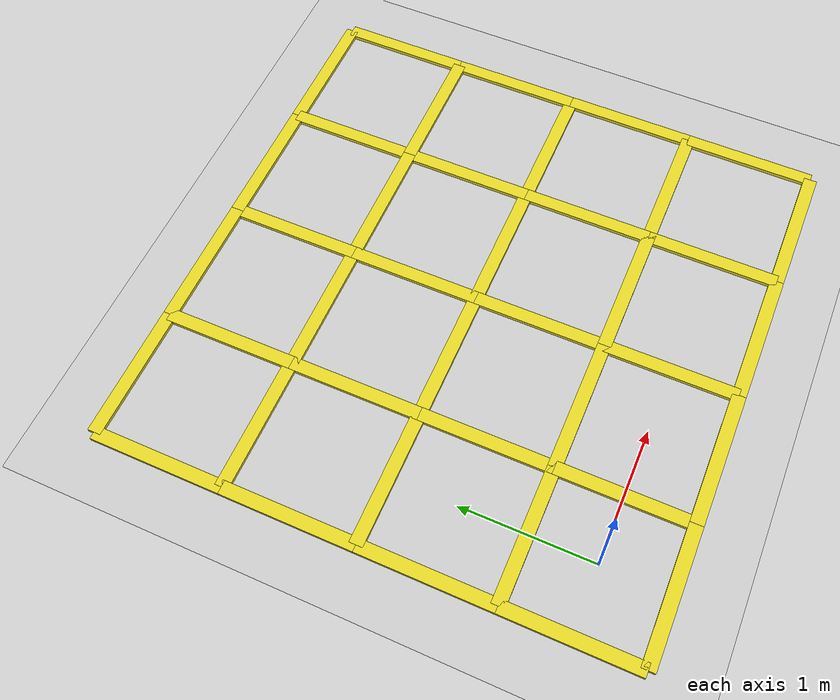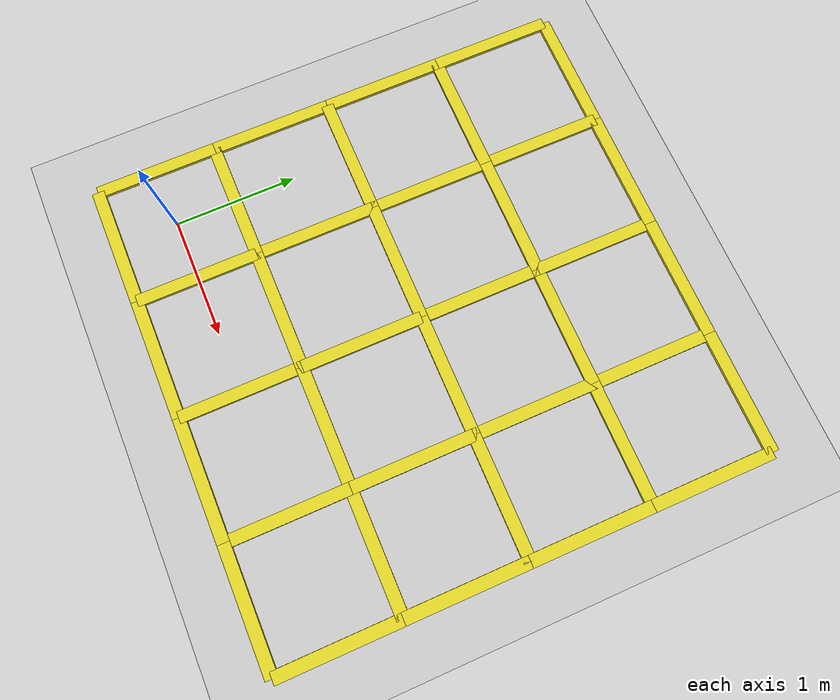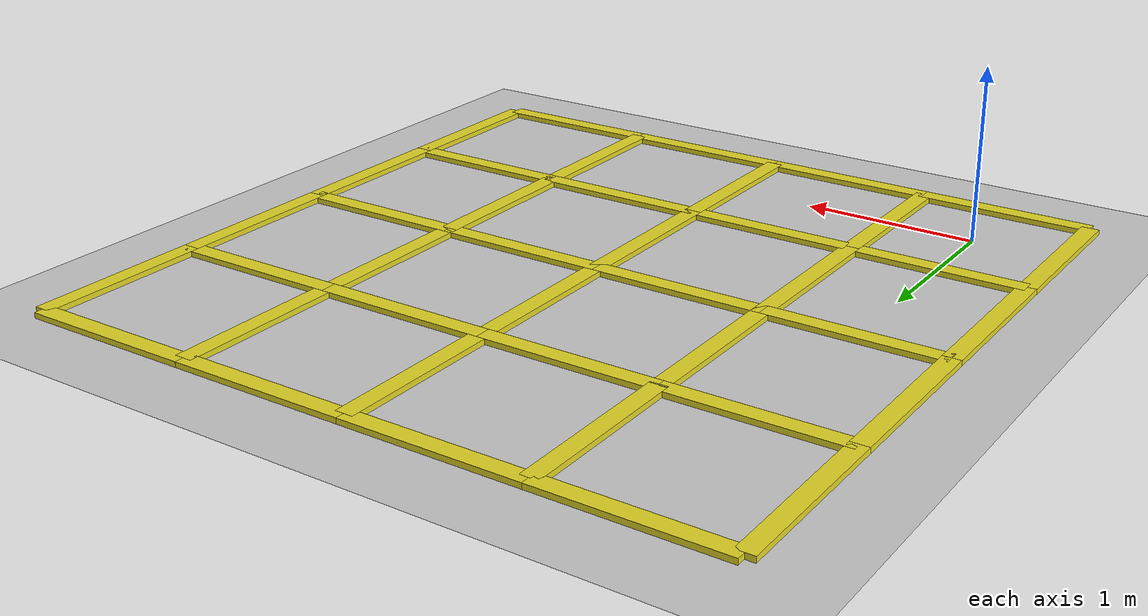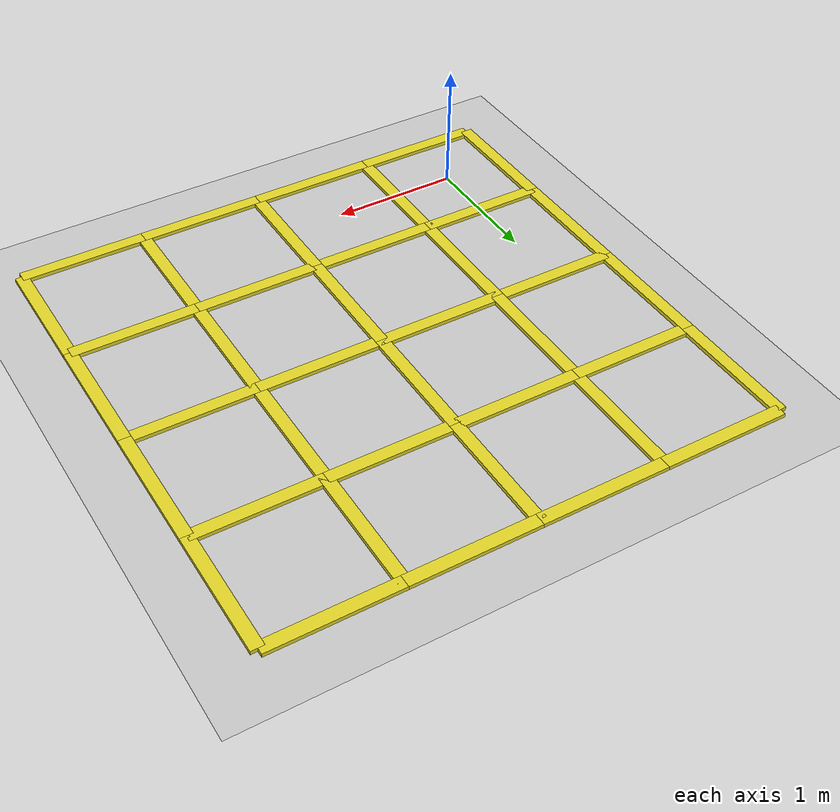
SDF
<sdf version="1.4">
 <world name="default">
  <include><uri>model://sun</uri></include>
  <include><uri>model://ground_plane</uri></include>
  <model name="yellow line_00_1">
   <static>1</static>
   <link name="link_ground">
    <collision name="collision">
     <geometry><plane><normal>0 0 1</normal><size>0.1 1.0</size></plane></geometry>
     <surface><friction><ode><mu>100</mu><mu2>50</mu2></ode></friction></surface>
    </collision>
    <visual name="visual_ground">
     <cast_shadows>0</cast_shadows>
     <geometry><box><size>0.1 1.0 0.05</size></box></geometry>
     <material>
      <script><uri>file://media/materials/scripts/gazebo.material</uri><name>Gazebo/Yellow</name></script>
     </material>
    </visual>
   </link>
   <pose>0.5 0.0 0 0 0 0</pose>
  </model>
  <model name="yellow line_00_2">
   <static>1</static>
   <link name="link_ground">
    <collision name="collision">
     <geometry><plane><normal>0 0 1</normal><size>0.1 1.0</size></plane></geometry>
     <surface><friction><ode><mu>100</mu><mu2>50</mu2></ode></friction></surface>
    </collision>
    <visual name="visual_ground">
     <cast_shadows>0</cast_shadows>
     <geometry><box><size>0.1 1.0 0.05</size></box></geometry>
     <material>
      <script><uri>file://media/materials/scripts/gazebo.material</uri><name>Gazebo/Yellow</name></script>
     </material>
    </visual>
   </link>
   <pose>-0.5 0.0 0 0 0 0</pose>
  </model>
  <model name="yellow line_00_3">
   <static>1</static>
   <link name="link_ground">
    <collision name="collision">
     <geometry><plane><normal>0 0 1</normal><size>0.1 1.0</size></plane></geometry>
     <surface><friction><ode><mu>100</mu><mu2>50</mu2></ode></friction></surface>
    </collision>
    <visual name="visual_ground">
     <cast_shadows>0</cast_shadows>
     <geometry><box><size>0.1 1.0 0.05</size></box></geometry>
     <material>
      <script><uri>file://media/materials/scripts/gazebo.material</uri><name>Gazebo/Yellow</name></script>
     </material>
    </visual>
   </link>
   <pose>0.0 0.5 0 0 0 1.57079632679</pose>
  </model>
  <model name="yellow line_00_4">
   <static>1</static>
   <link name="link_ground">
    <collision name="collision">
     <geometry><plane><normal>0 0 1</normal><size>0.1 1.0</size></plane></geometry>
     <surface><friction><ode><mu>100</mu><mu2>50</mu2></ode></friction></surface>
    </collision>
    <visual name="visual_ground">
     <cast_shadows>0</cast_shadows>
     <geometry><box><size>0.1 1.0 0.05</size></box></geometry>
     <material>
      <script><uri>file://media/materials/scripts/gazebo.material</uri><name>Gazebo/Yellow</name></script>
     </material>
    </visual>
   </link>
   <pose>0.0 -0.5 0 0 0 1.57079632679</pose>
  </model>
  <model name="yellow line_01_1">
   <static>1</static>
   <link name="link_ground">
    <collision name="collision">
     <geometry><plane><normal>0 0 1</normal><size>0.1 1.0</size></plane></geometry>
     <surface><friction><ode><mu>100</mu><mu2>50</mu2></ode></friction></surface>
    </collision>
    <visual name="visual_ground">
     <cast_shadows>0</cast_shadows>
     <geometry><box><size>0.1 1.0 0.05</size></box></geometry>
     <material>
      <script><uri>file://media/materials/scripts/gazebo.material</uri><name>Gazebo/Yellow</name></script>
     </material>
    </visual>
   </link>
   <pose>1.5 0.0 0 0 0 0</pose>
  </model>
  <model name="yellow line_01_2">
   <static>1</static>
   <link name="link_ground">
    <collision name="collision">
     <geometry><plane><normal>0 0 1</normal><size>0.1 1.0</size></plane></geometry>
     <surface><friction><ode><mu>100</mu><mu2>50</mu2></ode></friction></surface>
    </collision>
    <visual name="visual_ground">
     <cast_shadows>0</cast_shadows>
     <geometry><box><size>0.1 1.0 0.05</size></box></geometry>
     <material>
      <script><uri>file://media/materials/scripts/gazebo.material</uri><name>Gazebo/Yellow</name></script>
     </material>
    </visual>
   </link>
   <pose>0.5 0.0 0 0 0 0</pose>
  </model>
  <model name="yellow line_01_3">
   <static>1</static>
   <link name="link_ground">
    <collision name="collision">
     <geometry><plane><normal>0 0 1</normal><size>0.1 1.0</size></plane></geometry>
     <surface><friction><ode><mu>100</mu><mu2>50</mu2></ode></friction></surface>
    </collision>
    <visual name="visual_ground">
     <cast_shadows>0</cast_shadows>
     <geometry><box><size>0.1 1.0 0.05</size></box></geometry>
     <material>
      <script><uri>file://media/materials/scripts/gazebo.material</uri><name>Gazebo/Yellow</name></script>
     </material>
    </visual>
   </link>
   <pose>1.0 0.5 0 0 0 1.57079632679</pose>
  </model>
  <model name="yellow line_01_4">
   <static>1</static>
   <link name="link_ground">
    <collision name="collision">
     <geometry><plane><normal>0 0 1</normal><size>0.1 1.0</size></plane></geometry>
     <surface><friction><ode><mu>100</mu><mu2>50</mu2></ode></friction></surface>
    </collision>
    <visual name="visual_ground">
     <cast_shadows>0</cast_shadows>
     <geometry><box><size>0.1 1.0 0.05</size></box></geometry>
     <material>
      <script><uri>file://media/materials/scripts/gazebo.material</uri><name>Gazebo/Yellow</name></script>
     </material>
    </visual>
   </link>
   <pose>1.0 -0.5 0 0 0 1.57079632679</pose>
  </model>
  <model name="yellow line_02_1">
   <static>1</static>
   <link name="link_ground">
    <collision name="collision">
     <geometry><plane><normal>0 0 1</normal><size>0.1 1.0</size></plane></geometry>
     <surface><friction><ode><mu>100</mu><mu2>50</mu2></ode></friction></surface>
    </collision>
    <visual name="visual_ground">
     <cast_shadows>0</cast_shadows>
     <geometry><box><size>0.1 1.0 0.05</size></box></geometry>
     <material>
      <script><uri>file://media/materials/scripts/gazebo.material</uri><name>Gazebo/Yellow</name></script>
     </material>
    </visual>
   </link>
   <pose>2.5 0.0 0 0 0 0</pose>
  </model>
  <model name="yellow line_02_2">
   <static>1</static>
   <link name="link_ground">
    <collision name="collision">
     <geometry><plane><normal>0 0 1</normal><size>0.1 1.0</size></plane></geometry>
     <surface><friction><ode><mu>100</mu><mu2>50</mu2></ode></friction></surface>
    </collision>
    <visual name="visual_ground">
     <cast_shadows>0</cast_shadows>
     <geometry><box><size>0.1 1.0 0.05</size></box></geometry>
     <material>
      <script><uri>file://media/materials/scripts/gazebo.material</uri><name>Gazebo/Yellow</name></script>
     </material>
    </visual>
   </link>
   <pose>1.5 0.0 0 0 0 0</pose>
  </model>
  <model name="yellow line_02_3">
   <static>1</static>
   <link name="link_ground">
    <collision name="collision">
     <geometry><plane><normal>0 0 1</normal><size>0.1 1.0</size></plane></geometry>
     <surface><friction><ode><mu>100</mu><mu2>50</mu2></ode></friction></surface>
    </collision>
    <visual name="visual_ground">
     <cast_shadows>0</cast_shadows>
     <geometry><box><size>0.1 1.0 0.05</size></box></geometry>
     <material>
      <script><uri>file://media/materials/scripts/gazebo.material</uri><name>Gazebo/Yellow</name></script>
     </material>
    </visual>
   </link>
   <pose>2.0 0.5 0 0 0 1.57079632679</pose>
  </model>
  <model name="yellow line_02_4">
   <static>1</static>
   <link name="link_ground">
    <collision name="collision">
     <geometry><plane><normal>0 0 1</normal><size>0.1 1.0</size></plane></geometry>
     <surface><friction><ode><mu>100</mu><mu2>50</mu2></ode></friction></surface>
    </collision>
    <visual name="visual_ground">
     <cast_shadows>0</cast_shadows>
     <geometry><box><size>0.1 1.0 0.05</size></box></geometry>
     <material>
      <script><uri>file://media/materials/scripts/gazebo.material</uri><name>Gazebo/Yellow</name></script>
     </material>
    </visual>
   </link>
   <pose>2.0 -0.5 0 0 0 1.57079632679</pose>
  </model>
  <model name="yellow line_03_1">
   <static>1</static>
   <link name="link_ground">
    <collision name="collision">
     <geometry><plane><normal>0 0 1</normal><size>0.1 1.0</size></plane></geometry>
     <surface><friction><ode><mu>100</mu><mu2>50</mu2></ode></friction></surface>
    </collision>
    <visual name="visual_ground">
     <cast_shadows>0</cast_shadows>
     <geometry><box><size>0.1 1.0 0.05</size></box></geometry>
     <material>
      <script><uri>file://media/materials/scripts/gazebo.material</uri><name>Gazebo/Yellow</name></script>
     </material>
    </visual>
   </link>
   <pose>2.5 0.0 0 0 0 0</pose>
  </model>
  <model name="yellow line_03_2">
   <static>1</static>
   <link name="link_ground">
    <collision name="collision">
     <geometry><plane><normal>0 0 1</normal><size>0.1 1.0</size></plane></geometry>
     <surface><friction><ode><mu>100</mu><mu2>50</mu2></ode></friction></surface>
    </collision>
    <visual name="visual_ground">
     <cast_shadows>0</cast_shadows>
     <geometry><box><size>0.1 1.0 0.05</size></box></geometry>
     <material>
      <script><uri>file://media/materials/scripts/gazebo.material</uri><name>Gazebo/Yellow</name></script>
     </material>
    </visual>
   </link>
   <pose>3.5 0.0 0 0 0 0</pose>
  </model>
  <model name="yellow line_03_3">
   <static>1</static>
   <link name="link_ground">
    <collision name="collision">
     <geometry><plane><normal>0 0 1</normal><size>0.1 1.0</size></plane></geometry>
     <surface><friction><ode><mu>100</mu><mu2>50</mu2></ode></friction></surface>
    </collision>
    <visual name="visual_ground">
     <cast_shadows>0</cast_shadows>
     <geometry><box><size>0.1 1.0 0.05</size></box></geometry>
     <material>
      <script><uri>file://media/materials/scripts/gazebo.material</uri><name>Gazebo/Yellow</name></script>
     </material>
    </visual>
   </link>
   <pose>3.0 0.5 0 0 0 1.57079632679</pose>
  </model>
  <model name="yellow line_03_4">
   <static>1</static>
   <link name="link_ground">
    <collision name="collision">
     <geometry><plane><normal>0 0 1</normal><size>0.1 1.0</size></plane></geometry>
     <surface><friction><ode><mu>100</mu><mu2>50</mu2></ode></friction></surface>
    </collision>
    <visual name="visual_ground">
     <cast_shadows>0</cast_shadows>
     <geometry><box><size>0.1 1.0 0.05</size></box></geometry>
     <material>
      <script><uri>file://media/materials/scripts/gazebo.material</uri><name>Gazebo/Yellow</name></script>
     </material>
    </visual>
   </link>
   <pose>3.0 -0.5 0 0 0 1.57079632679</pose>
  </model>
  <model name="yellow line_10_1">
   <static>1</static>
   <link name="link_ground">
    <collision name="collision">
     <geometry><plane><normal>0 0 1</normal><size>0.1 1.0</size></plane></geometry>
     <surface><friction><ode><mu>100</mu><mu2>50</mu2></ode></friction></surface>
    </collision>
    <visual name="visual_ground">
     <cast_shadows>0</cast_shadows>
     <geometry><box><size>0.1 1.0 0.05</size></box></geometry>
     <material>
      <script><uri>file://media/materials/scripts/gazebo.material</uri><name>Gazebo/Yellow</name></script>
     </material>
    </visual>
   </link>
   <pose>0.5 1.0 0 0 0 0</pose>
  </model>
  <model name="yellow line_10_2">
   <static>1</static>
   <link name="link_ground">
    <collision name="collision">
     <geometry><plane><normal>0 0 1</normal><size>0.1 1.0</size></plane></geometry>
     <surface><friction><ode><mu>100</mu><mu2>50</mu2></ode></friction></surface>
    </collision>
    <visual name="visual_ground">
     <cast_shadows>0</cast_shadows>
     <geometry><box><size>0.1 1.0 0.05</size></box></geometry>
     <material>
      <script><uri>file://media/materials/scripts/gazebo.material</uri><name>Gazebo/Yellow</name></script>
     </material>
    </visual>
   </link>
   <pose>-0.5 1.0 0 0 0 0</pose>
  </model>
  <model name="yellow line_10_3">
   <static>1</static>
   <link name="link_ground">
    <collision name="collision">
     <geometry><plane><normal>0 0 1</normal><size>0.1 1.0</size></plane></geometry>
     <surface><friction><ode><mu>100</mu><mu2>50</mu2></ode></friction></surface>
    </collision>
    <visual name="visual_ground">
     <cast_shadows>0</cast_shadows>
     <geometry><box><size>0.1 1.0 0.05</size></box></geometry>
     <material>
      <script><uri>file://media/materials/scripts/gazebo.material</uri><name>Gazebo/Yellow</name></script>
     </material>
    </visual>
   </link>
   <pose>0.0 1.5 0 0 0 1.57079632679</pose>
  </model>
  <model name="yellow line_10_4">
   <static>1</static>
   <link name="link_ground">
    <collision name="collision">
     <geometry><plane><normal>0 0 1</normal><size>0.1 1.0</size></plane></geometry>
     <surface><friction><ode><mu>100</mu><mu2>50</mu2></ode></friction></surface>
    </collision>
    <visual name="visual_ground">
     <cast_shadows>0</cast_shadows>
     <geometry><box><size>0.1 1.0 0.05</size></box></geometry>
     <material>
      <script><uri>file://media/materials/scripts/gazebo.material</uri><name>Gazebo/Yellow</name></script>
     </material>
    </visual>
   </link>
   <pose>0.0 -0.5 0 0 0 1.57079632679</pose>
  </model>
  <model name="yellow line_20_1">
   <static>1</static>
   <link name="link_ground">
    <collision name="collision">
     <geometry><plane><normal>0 0 1</normal><size>0.1 1.0</size></plane></geometry>
     <surface><friction><ode><mu>100</mu><mu2>50</mu2></ode></friction></surface>
    </collision>
    <visual name="visual_ground">
     <cast_shadows>0</cast_shadows>
     <geometry><box><size>0.1 1.0 0.05</size></box></geometry>
     <material>
      <script><uri>file://media/materials/scripts/gazebo.material</uri><name>Gazebo/Yellow</name></script>
     </material>
    </visual>
   </link>
   <pose>0.5 2.0 0 0 0 0</pose>
  </model>
  <model name="yellow line_20_2">
   <static>1</static>
   <link name="link_ground">
    <collision name="collision">
     <geometry><plane><normal>0 0 1</normal><size>0.1 1.0</size></plane></geometry>
     <surface><friction><ode><mu>100</mu><mu2>50</mu2></ode></friction></surface>
    </collision>
    <visual name="visual_ground">
     <cast_shadows>0</cast_shadows>
     <geometry><box><size>0.1 1.0 0.05</size></box></geometry>
     <material>
      <script><uri>file://media/materials/scripts/gazebo.material</uri><name>Gazebo/Yellow</name></script>
     </material>
    </visual>
   </link>
   <pose>-0.5 2.0 0 0 0 0</pose>
  </model>
  <model name="yellow line_20_3">
   <static>1</static>
   <link name="link_ground">
    <collision name="collision">
     <geometry><plane><normal>0 0 1</normal><size>0.1 1.0</size></plane></geometry>
     <surface><friction><ode><mu>100</mu><mu2>50</mu2></ode></friction></surface>
    </collision>
    <visual name="visual_ground">
     <cast_shadows>0</cast_shadows>
     <geometry><box><size>0.1 1.0 0.05</size></box></geometry>
     <material>
      <script><uri>file://media/materials/scripts/gazebo.material</uri><name>Gazebo/Yellow</name></script>
     </material>
    </visual>
   </link>
   <pose>0.0 2.5 0 0 0 1.57079632679</pose>
  </model>
  <model name="yellow line_20_4">
   <static>1</static>
   <link name="link_ground">
    <collision name="collision">
     <geometry><plane><normal>0 0 1</normal><size>0.1 1.0</size></plane></geometry>
     <surface><friction><ode><mu>100</mu><mu2>50</mu2></ode></friction></surface>
    </collision>
    <visual name="visual_ground">
     <cast_shadows>0</cast_shadows>
     <geometry><box><size>0.1 1.0 0.05</size></box></geometry>
     <material>
      <script><uri>file://media/materials/scripts/gazebo.material</uri><name>Gazebo/Yellow</name></script>
     </material>
    </visual>
   </link>
   <pose>0.0 1.5 0 0 0 1.57079632679</pose>
  </model>
  <model name="yellow line_30_1">
   <static>1</static>
   <link name="link_ground">
    <collision name="collision">
     <geometry><plane><normal>0 0 1</normal><size>0.1 1.0</size></plane></geometry>
     <surface><friction><ode><mu>100</mu><mu2>50</mu2></ode></friction></surface>
    </collision>
    <visual name="visual_ground">
     <cast_shadows>0</cast_shadows>
     <geometry><box><size>0.1 1.0 0.05</size></box></geometry>
     <material>
      <script><uri>file://media/materials/scripts/gazebo.material</uri><name>Gazebo/Yellow</name></script>
     </material>
    </visual>
   </link>
   <pose>0.5 3.0 0 0 0 0</pose>
  </model>
  <model name="yellow line_30_2">
   <static>1</static>
   <link name="link_ground">
    <collision name="collision">
     <geometry><plane><normal>0 0 1</normal><size>0.1 1.0</size></plane></geometry>
     <surface><friction><ode><mu>100</mu><mu2>50</mu2></ode></friction></surface>
    </collision>
    <visual name="visual_ground">
     <cast_shadows>0</cast_shadows>
     <geometry><box><size>0.1 1.0 0.05</size></box></geometry>
     <material>
      <script><uri>file://media/materials/scripts/gazebo.material</uri><name>Gazebo/Yellow</name></script>
     </material>
    </visual>
   </link>
   <pose>-0.5 3.0 0 0 0 0</pose>
  </model>
  <model name="yellow line_30_3">
   <static>1</static>
   <link name="link_ground">
    <collision name="collision">
     <geometry><plane><normal>0 0 1</normal><size>0.1 1.0</size></plane></geometry>
     <surface><friction><ode><mu>100</mu><mu2>50</mu2></ode></friction></surface>
    </collision>
    <visual name="visual_ground">
     <cast_shadows>0</cast_shadows>
     <geometry><box><size>0.1 1.0 0.05</size></box></geometry>
     <material>
      <script><uri>file://media/materials/scripts/gazebo.material</uri><name>Gazebo/Yellow</name></script>
     </material>
    </visual>
   </link>
   <pose>0.0 3.5 0 0 0 1.57079632679</pose>
  </model>
  <model name="yellow line_30_4">
   <static>1</static>
   <link name="link_ground">
    <collision name="collision">
     <geometry><plane><normal>0 0 1</normal><size>0.1 1.0</size></plane></geometry>
     <surface><friction><ode><mu>100</mu><mu2>50</mu2></ode></friction></surface>
    </collision>
    <visual name="visual_ground">
     <cast_shadows>0</cast_shadows>
     <geometry><box><size>0.1 1.0 0.05</size></box></geometry>
     <material>
      <script><uri>file://media/materials/scripts/gazebo.material</uri><name>Gazebo/Yellow</name></script>
     </material>
    </visual>
   </link>
   <pose>0.0 2.5 0 0 0 1.57079632679</pose>
  </model>
  <model name="yellow line_11_1">
   <static>1</static>
   <link name="link_ground">
    <collision name="collision">
     <geometry><plane><normal>0 0 1</normal><size>0.1 1.0</size></plane></geometry>
     <surface><friction><ode><mu>100</mu><mu2>50</mu2></ode></friction></surface>
    </collision>
    <visual name="visual_ground">
     <cast_shadows>0</cast_shadows>
     <geometry><box><size>0.1 1.0 0.05</size></box></geometry>
     <material>
      <script><uri>file://media/materials/scripts/gazebo.material</uri><name>Gazebo/Yellow</name></script>
     </material>
    </visual>
   </link>
   <pose>1.5 1.0 0 0 0 0</pose>
  </model>
  <model name="yellow line_11_2">
   <static>1</static>
   <link name="link_ground">
    <collision name="collision">
     <geometry><plane><normal>0 0 1</normal><size>0.1 1.0</size></plane></geometry>
     <surface><friction><ode><mu>100</mu><mu2>50</mu2></ode></friction></surface>
    </collision>
    <visual name="visual_ground">
     <cast_shadows>0</cast_shadows>
     <geometry><box><size>0.1 1.0 0.05</size></box></geometry>
     <material>
      <script><uri>file://media/materials/scripts/gazebo.material</uri><name>Gazebo/Yellow</name></script>
     </material>
    </visual>
   </link>
   <pose>0.5 1.0 0 0 0 0</pose>
  </model>
  <model name="yellow line_11_3">
   <static>1</static>
   <link name="link_ground">
    <collision name="collision">
     <geometry><plane><normal>0 0 1</normal><size>0.1 1.0</size></plane></geometry>
     <surface><friction><ode><mu>100</mu><mu2>50</mu2></ode></friction></surface>
    </collision>
    <visual name="visual_ground">
     <cast_shadows>0</cast_shadows>
     <geometry><box><size>0.1 1.0 0.05</size></box></geometry>
     <material>
      <script><uri>file://media/materials/scripts/gazebo.material</uri><name>Gazebo/Yellow</name></script>
     </material>
    </visual>
   </link>
   <pose>1.0 1.5 0 0 0 1.57079632679</pose>
  </model>
  <model name="yellow line_11_4">
   <static>1</static>
   <link name="link_ground">
    <collision name="collision">
     <geometry><plane><normal>0 0 1</normal><size>0.1 1.0</size></plane></geometry>
     <surface><friction><ode><mu>100</mu><mu2>50</mu2></ode></friction></surface>
    </collision>
    <visual name="visual_ground">
     <cast_shadows>0</cast_shadows>
     <geometry><box><size>0.1 1.0 0.05</size></box></geometry>
     <material>
      <script><uri>file://media/materials/scripts/gazebo.material</uri><name>Gazebo/Yellow</name></script>
     </material>
    </visual>
   </link>
   <pose>1.0 0.5 0 0 0 1.57079632679</pose>
  </model>
  <model name="yellow line_12_1">
   <static>1</static>
   <link name="link_ground">
    <collision name="collision">
     <geometry><plane><normal>0 0 1</normal><size>0.1 1.0</size></plane></geometry>
     <surface><friction><ode><mu>100</mu><mu2>50</mu2></ode></friction></surface>
    </collision>
    <visual name="visual_ground">
     <cast_shadows>0</cast_shadows>
     <geometry><box><size>0.1 1.0 0.05</size></box></geometry>
     <material>
      <script><uri>file://media/materials/scripts/gazebo.material</uri><name>Gazebo/Yellow</name></script>
     </material>
    </visual>
   </link>
   <pose>1.5 2.0 0 0 0 0</pose>
  </model>
  <model name="yellow line_12_2">
   <static>1</static>
   <link name="link_ground">
    <collision name="collision">
     <geometry><plane><normal>0 0 1</normal><size>0.1 1.0</size></plane></geometry>
     <surface><friction><ode><mu>100</mu><mu2>50</mu2></ode></friction></surface>
    </collision>
    <visual name="visual_ground">
     <cast_shadows>0</cast_shadows>
     <geometry><box><size>0.1 1.0 0.05</size></box></geometry>
     <material>
      <script><uri>file://media/materials/scripts/gazebo.material</uri><name>Gazebo/Yellow</name></script>
     </material>
    </visual>
   </link>
   <pose>0.5 2.0 0 0 0 0</pose>
  </model>
  <model name="yellow line_12_3">
   <static>1</static>
   <link name="link_ground">
    <collision name="collision">
     <geometry><plane><normal>0 0 1</normal><size>0.1 1.0</size></plane></geometry>
     <surface><friction><ode><mu>100</mu><mu2>50</mu2></ode></friction></surface>
    </collision>
    <visual name="visual_ground">
     <cast_shadows>0</cast_shadows>
     <geometry><box><size>0.1 1.0 0.05</size></box></geometry>
     <material>
      <script><uri>file://media/materials/scripts/gazebo.material</uri><name>Gazebo/Yellow</name></script>
     </material>
    </visual>
   </link>
   <pose>1.0 2.5 0 0 0 1.57079632679</pose>
  </model>
  <model name="yellow line_12_4">
   <static>1</static>
   <link name="link_ground">
    <collision name="collision">
     <geometry><plane><normal>0 0 1</normal><size>0.1 1.0</size></plane></geometry>
     <surface><friction><ode><mu>100</mu><mu2>50</mu2></ode></friction></surface>
    </collision>
    <visual name="visual_ground">
     <cast_shadows>0</cast_shadows>
     <geometry><box><size>0.1 1.0 0.05</size></box></geometry>
     <material>
      <script><uri>file://media/materials/scripts/gazebo.material</uri><name>Gazebo/Yellow</name></script>
     </material>
    </visual>
   </link>
   <pose>1.0 1.5 0 0 0 1.57079632679</pose>
  </model>
  <model name="yellow line_13_1">
   <static>1</static>
   <link name="link_ground">
    <collision name="collision">
     <geometry><plane><normal>0 0 1</normal><size>0.1 1.0</size></plane></geometry>
     <surface><friction><ode><mu>100</mu><mu2>50</mu2></ode></friction></surface>
    </collision>
    <visual name="visual_ground">
     <cast_shadows>0</cast_shadows>
     <geometry><box><size>0.1 1.0 0.05</size></box></geometry>
     <material>
      <script><uri>file://media/materials/scripts/gazebo.material</uri><name>Gazebo/Yellow</name></script>
     </material>
    </visual>
   </link>
   <pose>1.5 3.0 0 0 0 0</pose>
  </model>
  <model name="yellow line_13_2">
   <static>1</static>
   <link name="link_ground">
    <collision name="collision">
     <geometry><plane><normal>0 0 1</normal><size>0.1 1.0</size></plane></geometry>
     <surface><friction><ode><mu>100</mu><mu2>50</mu2></ode></friction></surface>
    </collision>
    <visual name="visual_ground">
     <cast_shadows>0</cast_shadows>
     <geometry><box><size>0.1 1.0 0.05</size></box></geometry>
     <material>
      <script><uri>file://media/materials/scripts/gazebo.material</uri><name>Gazebo/Yellow</name></script>
     </material>
    </visual>
   </link>
   <pose>0.5 3.0 0 0 0 0</pose>
  </model>
  <model name="yellow line_13_3">
   <static>1</static>
   <link name="link_ground">
    <collision name="collision">
     <geometry><plane><normal>0 0 1</normal><size>0.1 1.0</size></plane></geometry>
     <surface><friction><ode><mu>100</mu><mu2>50</mu2></ode></friction></surface>
    </collision>
    <visual name="visual_ground">
     <cast_shadows>0</cast_shadows>
     <geometry><box><size>0.1 1.0 0.05</size></box></geometry>
     <material>
      <script><uri>file://media/materials/scripts/gazebo.material</uri><name>Gazebo/Yellow</name></script>
     </material>
    </visual>
   </link>
   <pose>1.0 3.5 0 0 0 1.57079632679</pose>
  </model>
  <model name="yellow line_13_4">
   <static>1</static>
   <link name="link_ground">
    <collision name="collision">
     <geometry><plane><normal>0 0 1</normal><size>0.1 1.0</size></plane></geometry>
     <surface><friction><ode><mu>100</mu><mu2>50</mu2></ode></friction></surface>
    </collision>
    <visual name="visual_ground">
     <cast_shadows>0</cast_shadows>
     <geometry><box><size>0.1 1.0 0.05</size></box></geometry>
     <material>
      <script><uri>file://media/materials/scripts/gazebo.material</uri><name>Gazebo/Yellow</name></script>
     </material>
    </visual>
   </link>
   <pose>1.0 2.5 0 0 0 1.57079632679</pose>
  </model>
  <model name="yellow line_22_1">
   <static>1</static>
   <link name="link_ground">
    <collision name="collision">
     <geometry><plane><normal>0 0 1</normal><size>0.1 1.0</size></plane></geometry>
     <surface><friction><ode><mu>100</mu><mu2>50</mu2></ode></friction></surface>
    </collision>
    <visual name="visual_ground">
     <cast_shadows>0</cast_shadows>
     <geometry><box><size>0.1 1.0 0.05</size></box></geometry>
     <material>
      <script><uri>file://media/materials/scripts/gazebo.material</uri><name>Gazebo/Yellow</name></script>
     </material>
    </visual>
   </link>
   <pose>2.5 2.0 0 0 0 0</pose>
  </model>
  <model name="yellow line_22_2">
   <static>1</static>
   <link name="link_ground">
    <collision name="collision">
     <geometry><plane><normal>0 0 1</normal><size>0.1 1.0</size></plane></geometry>
     <surface><friction><ode><mu>100</mu><mu2>50</mu2></ode></friction></surface>
    </collision>
    <visual name="visual_ground">
     <cast_shadows>0</cast_shadows>
     <geometry><box><size>0.1 1.0 0.05</size></box></geometry>
     <material>
      <script><uri>file://media/materials/scripts/gazebo.material</uri><name>Gazebo/Yellow</name></script>
     </material>
    </visual>
   </link>
   <pose>1.5 2.0 0 0 0 0</pose>
  </model>
  <model name="yellow line_22_3">
   <static>1</static>
   <link name="link_ground">
    <collision name="collision">
     <geometry><plane><normal>0 0 1</normal><size>0.1 1.0</size></plane></geometry>
     <surface><friction><ode><mu>100</mu><mu2>50</mu2></ode></friction></surface>
    </collision>
    <visual name="visual_ground">
     <cast_shadows>0</cast_shadows>
     <geometry><box><size>0.1 1.0 0.05</size></box></geometry>
     <material>
      <script><uri>file://media/materials/scripts/gazebo.material</uri><name>Gazebo/Yellow</name></script>
     </material>
    </visual>
   </link>
   <pose>2.0 2.5 0 0 0 1.57079632679</pose>
  </model>
  <model name="yellow line_22_4">
   <static>1</static>
   <link name="link_ground">
    <collision name="collision">
     <geometry><plane><normal>0 0 1</normal><size>0.1 1.0</size></plane></geometry>
     <surface><friction><ode><mu>100</mu><mu2>50</mu2></ode></friction></surface>
    </collision>
    <visual name="visual_ground">
     <cast_shadows>0</cast_shadows>
     <geometry><box><size>0.1 1.0 0.05</size></box></geometry>
     <material>
      <script><uri>file://media/materials/scripts/gazebo.material</uri><name>Gazebo/Yellow</name></script>
     </material>
    </visual>
   </link>
   <pose>2.0 1.5 0 0 0 1.57079632679</pose>
  </model>
  <model name="yellow line_23_1">
   <static>1</static>
   <link name="link_ground">
    <collision name="collision">
     <geometry><plane><normal>0 0 1</normal><size>0.1 1.0</size></plane></geometry>
     <surface><friction><ode><mu>100</mu><mu2>50</mu2></ode></friction></surface>
    </collision>
    <visual name="visual_ground">
     <cast_shadows>0</cast_shadows>
     <geometry><box><size>0.1 1.0 0.05</size></box></geometry>
     <material>
      <script><uri>file://media/materials/scripts/gazebo.material</uri><name>Gazebo/Yellow</name></script>
     </material>
    </visual>
   </link>
   <pose>2.5 3.0 0 0 0 0</pose>
  </model>
  <model name="yellow line_23_2">
   <static>1</static>
   <link name="link_ground">
    <collision name="collision">
     <geometry><plane><normal>0 0 1</normal><size>0.1 1.0</size></plane></geometry>
     <surface><friction><ode><mu>100</mu><mu2>50</mu2></ode></friction></surface>
    </collision>
    <visual name="visual_ground">
     <cast_shadows>0</cast_shadows>
     <geometry><box><size>0.1 1.0 0.05</size></box></geometry>
     <material>
      <script><uri>file://media/materials/scripts/gazebo.material</uri><name>Gazebo/Yellow</name></script>
     </material>
    </visual>
   </link>
   <pose>1.5 3.0 0 0 0 0</pose>
  </model>
  <model name="yellow line_23_3">
   <static>1</static>
   <link name="link_ground">
    <collision name="collision">
     <geometry><plane><normal>0 0 1</normal><size>0.1 1.0</size></plane></geometry>
     <surface><friction><ode><mu>100</mu><mu2>50</mu2></ode></friction></surface>
    </collision>
    <visual name="visual_ground">
     <cast_shadows>0</cast_shadows>
     <geometry><box><size>0.1 1.0 0.05</size></box></geometry>
     <material>
      <script><uri>file://media/materials/scripts/gazebo.material</uri><name>Gazebo/Yellow</name></script>
     </material>
    </visual>
   </link>
   <pose>2.0 3.5 0 0 0 1.57079632679</pose>
  </model>
  <model name="yellow line_23_4">
   <static>1</static>
   <link name="link_ground">
    <collision name="collision">
     <geometry><plane><normal>0 0 1</normal><size>0.1 1.0</size></plane></geometry>
     <surface><friction><ode><mu>100</mu><mu2>50</mu2></ode></friction></surface>
    </collision>
    <visual name="visual_ground">
     <cast_shadows>0</cast_shadows>
     <geometry><box><size>0.1 1.0 0.05</size></box></geometry>
     <material>
      <script><uri>file://media/materials/scripts/gazebo.material</uri><name>Gazebo/Yellow</name></script>
     </material>
    </visual>
   </link>
   <pose>2.0 2.5 0 0 0 1.57079632679</pose>
  </model>
  <model name="yellow line_31_1">
   <static>1</static>
   <link name="link_ground">
    <collision name="collision">
     <geometry><plane><normal>0 0 1</normal><size>0.1 1.0</size></plane></geometry>
     <surface><friction><ode><mu>100</mu><mu2>50</mu2></ode></friction></surface>
    </collision>
    <visual name="visual_ground">
     <cast_shadows>0</cast_shadows>
     <geometry><box><size>0.1 1.0 0.05</size></box></geometry>
     <material>
      <script><uri>file://media/materials/scripts/gazebo.material</uri><name>Gazebo/Yellow</name></script>
     </material>
    </visual>
   </link>
   <pose>3.5 1.0 0 0 0 0</pose>
  </model>
  <model name="yellow line_31_2">
   <static>1</static>
   <link name="link_ground">
    <collision name="collision">
     <geometry><plane><normal>0 0 1</normal><size>0.1 1.0</size></plane></geometry>
     <surface><friction><ode><mu>100</mu><mu2>50</mu2></ode></friction></surface>
    </collision>
    <visual name="visual_ground">
     <cast_shadows>0</cast_shadows>
     <geometry><box><size>0.1 1.0 0.05</size></box></geometry>
     <material>
      <script><uri>file://media/materials/scripts/gazebo.material</uri><name>Gazebo/Yellow</name></script>
     </material>
    </visual>
   </link>
   <pose>2.5 1.0 0 0 0 0</pose>
  </model>
  <model name="yellow line_31_3">
   <static>1</static>
   <link name="link_ground">
    <collision name="collision">
     <geometry><plane><normal>0 0 1</normal><size>0.1 1.0</size></plane></geometry>
     <surface><friction><ode><mu>100</mu><mu2>50</mu2></ode></friction></surface>
    </collision>
    <visual name="visual_ground">
     <cast_shadows>0</cast_shadows>
     <geometry><box><size>0.1 1.0 0.05</size></box></geometry>
     <material>
      <script><uri>file://media/materials/scripts/gazebo.material</uri><name>Gazebo/Yellow</name></script>
     </material>
    </visual>
   </link>
   <pose>3.0 0.5 0 0 0 1.57079632679</pose>
  </model>
  <model name="yellow line_31_4">
   <static>1</static>
   <link name="link_ground">
    <collision name="collision">
     <geometry><plane><normal>0 0 1</normal><size>0.1 1.0</size></plane></geometry>
     <surface><friction><ode><mu>100</mu><mu2>50</mu2></ode></friction></surface>
    </collision>
    <visual name="visual_ground">
     <cast_shadows>0</cast_shadows>
     <geometry><box><size>0.1 1.0 0.05</size></box></geometry>
     <material>
      <script><uri>file://media/materials/scripts/gazebo.material</uri><name>Gazebo/Yellow</name></script>
     </material>
    </visual>
   </link>
   <pose>3.0 1.5 0 0 0 1.57079632679</pose>
  </model>
  <model name="yellow line_32_1">
   <static>1</static>
   <link name="link_ground">
    <collision name="collision">
     <geometry><plane><normal>0 0 1</normal><size>0.1 1.0</size></plane></geometry>
     <surface><friction><ode><mu>100</mu><mu2>50</mu2></ode></friction></surface>
    </collision>
    <visual name="visual_ground">
     <cast_shadows>0</cast_shadows>
     <geometry><box><size>0.1 1.0 0.05</size></box></geometry>
     <material>
      <script><uri>file://media/materials/scripts/gazebo.material</uri><name>Gazebo/Yellow</name></script>
     </material>
    </visual>
   </link>
   <pose>3.5 2.0 0 0 0 0</pose>
  </model>
  <model name="yellow line_32_2">
   <static>1</static>
   <link name="link_ground">
    <collision name="collision">
     <geometry><plane><normal>0 0 1</normal><size>0.1 1.0</size></plane></geometry>
     <surface><friction><ode><mu>100</mu><mu2>50</mu2></ode></friction></surface>
    </collision>
    <visual name="visual_ground">
     <cast_shadows>0</cast_shadows>
     <geometry><box><size>0.1 1.0 0.05</size></box></geometry>
     <material>
      <script><uri>file://media/materials/scripts/gazebo.material</uri><name>Gazebo/Yellow</name></script>
     </material>
    </visual>
   </link>
   <pose>2.5 2.0 0 0 0 0</pose>
  </model>
  <model name="yellow line_32_3">
   <static>1</static>
   <link name="link_ground">
    <collision name="collision">
     <geometry><plane><normal>0 0 1</normal><size>0.1 1.0</size></plane></geometry>
     <surface><friction><ode><mu>100</mu><mu2>50</mu2></ode></friction></surface>
    </collision>
    <visual name="visual_ground">
     <cast_shadows>0</cast_shadows>
     <geometry><box><size>0.1 1.0 0.05</size></box></geometry>
     <material>
      <script><uri>file://media/materials/scripts/gazebo.material</uri><name>Gazebo/Yellow</name></script>
     </material>
    </visual>
   </link>
   <pose>3.0 1.5 0 0 0 1.57079632679</pose>
  </model>
  <model name="yellow line_32_4">
   <static>1</static>
   <link name="link_ground">
    <collision name="collision">
     <geometry><plane><normal>0 0 1</normal><size>0.1 1.0</size></plane></geometry>
     <surface><friction><ode><mu>100</mu><mu2>50</mu2></ode></friction></surface>
    </collision>
    <visual name="visual_ground">
     <cast_shadows>0</cast_shadows>
     <geometry><box><size>0.1 1.0 0.05</size></box></geometry>
     <material>
      <script><uri>file://media/materials/scripts/gazebo.material</uri><name>Gazebo/Yellow</name></script>
     </material>
    </visual>
   </link>
   <pose>3.0 2.5 0 0 0 1.57079632679</pose>
  </model>
  <model name="yellow line_33_1">
   <static>1</static>
   <link name="link_ground">
    <collision name="collision">
     <geometry><plane><normal>0 0 1</normal><size>0.1 1.0</size></plane></geometry>
     <surface><friction><ode><mu>100</mu><mu2>50</mu2></ode></friction></surface>
    </collision>
    <visual name="visual_ground">
     <cast_shadows>0</cast_shadows>
     <geometry><box><size>0.1 1.0 0.05</size></box></geometry>
     <material>
      <script><uri>file://media/materials/scripts/gazebo.material</uri><name>Gazebo/Yellow</name></script>
     </material>
    </visual>
   </link>
   <pose>3.5 3.0 0 0 0 0</pose>
  </model>
  <model name="yellow line_33_2">
   <static>1</static>
   <link name="link_ground">
    <collision name="collision">
     <geometry><plane><normal>0 0 1</normal><size>0.1 1.0</size></plane></geometry>
     <surface><friction><ode><mu>100</mu><mu2>50</mu2></ode></friction></surface>
    </collision>
    <visual name="visual_ground">
     <cast_shadows>0</cast_shadows>
     <geometry><box><size>0.1 1.0 0.05</size></box></geometry>
     <material>
      <script><uri>file://media/materials/scripts/gazebo.material</uri><name>Gazebo/Yellow</name></script>
     </material>
    </visual>
   </link>
   <pose>2.5 3.0 0 0 0 0</pose>
  </model>
  <model name="yellow line_33_3">
   <static>1</static>
   <link name="link_ground">
    <collision name="collision">
     <geometry><plane><normal>0 0 1</normal><size>0.1 1.0</size></plane></geometry>
     <surface><friction><ode><mu>100</mu><mu2>50</mu2></ode></friction></surface>
    </collision>
    <visual name="visual_ground">
     <cast_shadows>0</cast_shadows>
     <geometry><box><size>0.1 1.0 0.05</size></box></geometry>
     <material>
      <script><uri>file://media/materials/scripts/gazebo.material</uri><name>Gazebo/Yellow</name></script>
     </material>
    </visual>
   </link>
   <pose>3.0 2.5 0 0 0 1.57079632679</pose>
  </model>
  <model name="yellow line_33_4">
   <static>1</static>
   <link name="link_ground">
    <collision name="collision">
     <geometry><plane><normal>0 0 1</normal><size>0.1 1.0</size></plane></geometry>
     <surface><friction><ode><mu>100</mu><mu2>50</mu2></ode></friction></surface>
    </collision>
    <visual name="visual_ground">
     <cast_shadows>0</cast_shadows>
     <geometry><box><size>0.1 1.0 0.05</size></box></geometry>
     <material>
      <script><uri>file://media/materials/scripts/gazebo.material</uri><name>Gazebo/Yellow</name></script>
     </material>
    </visual>
   </link>
   <pose>3.0 3.5 0 0 0 1.57079632679</pose>
  </model>
 </world>
</sdf>
